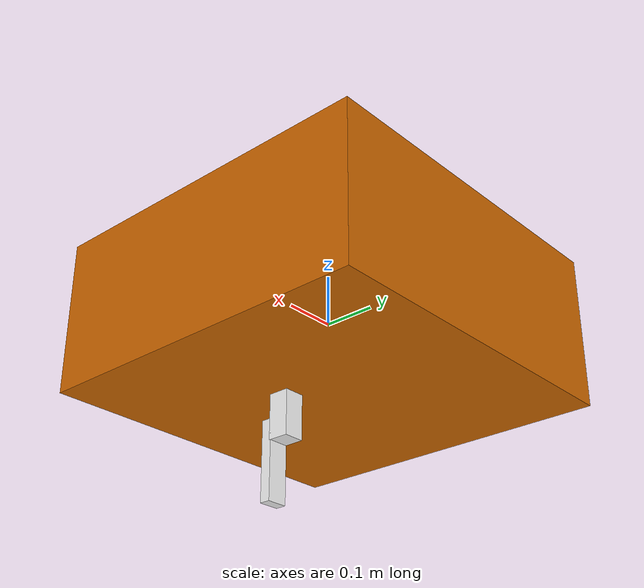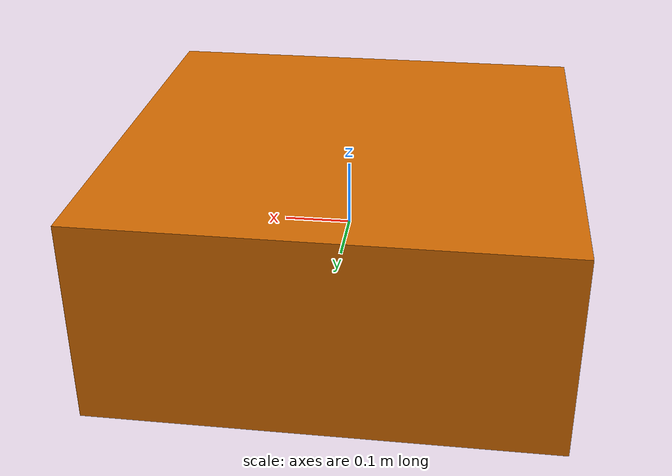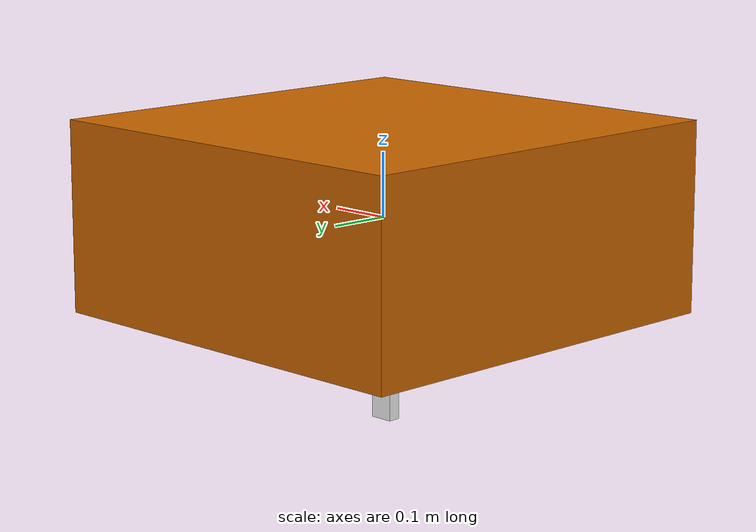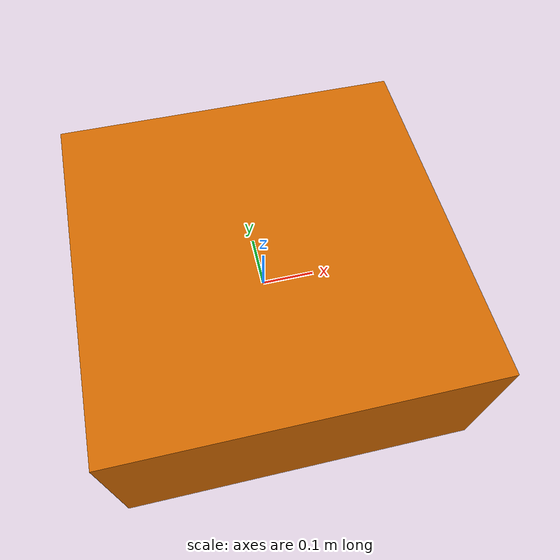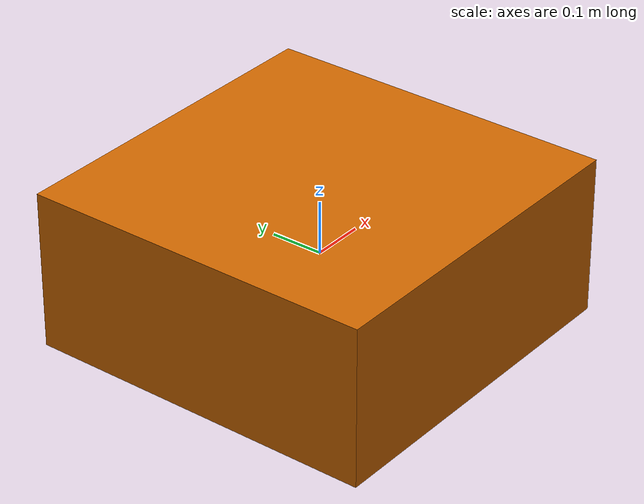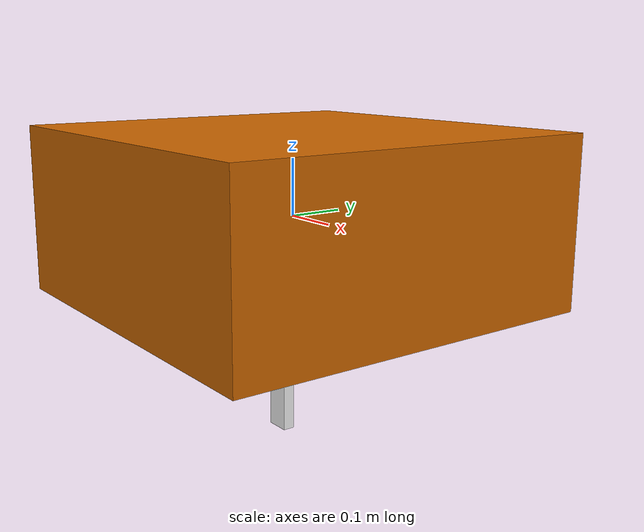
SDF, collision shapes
<!-- DO NOT EDIT: Generated from iris.sdf.jinja -->
<sdf version='1.5'>
  <model name='borinot_flying_arm_2'>
    <include merge='true'>
      <uri>model://borinot</uri>
    </include>

    <joint name='flying_arm_2__j_bl_link1' type='revolute'>
      <pose relative_to='borinot__base_link'>0.06470099999999999 -0.022177 -0.05075 1.5708
        4.235164736271502e-22 3.141585307179587</pose>
      <parent>borinot__base_link</parent>
      <child>flying_arm_2__link1</child>
      <axis>
        <xyz>0 0 -1</xyz>
        <limit>
          <lower>-1.6707963267948971</lower>
          <upper>1.6707963267948971</upper>
          <effort>2.5</effort>
          <velocity>10000</velocity>
        </limit>
        <dynamics>
          <spring_reference>0</spring_reference>
          <spring_stiffness>0</spring_stiffness>
        </dynamics>
      </axis>
    </joint>
    <link name='flying_arm_2__link1'>
      <pose relative_to='flying_arm_2__j_bl_link1'>0 0 0 0 0 0</pose>
      <inertial>
        <pose>1.377e-05 -0.078707 -0.01935853 0 0 0</pose>
        <mass>0.14853844999999999</mass>
        <inertia>
          <ixx>0.00041106999999999998</ixx>
          <ixy>0</ixy>
          <ixz>0</ixz>
          <iyy>3.0239999999999998e-05</iyy>
          <iyz>-4.6709999999999998e-05</iyz>
          <izz>0.00041193000000000002</izz>
        </inertia>
      </inertial>
      <collision name='flying_arm_2__link1_collision'>
        <pose>0 -0.085 -0.02 0 0 0</pose>
        <geometry>
          <box>
            <size>0.04 0.2 0.04</size>
          </box>
        </geometry>
      </collision>
      <visual name='flying_arm_2__link1_visual'>
        <pose>0 0 0 0 0 0</pose>
        <geometry>
          <mesh>
            <scale>1 1 1</scale>
            <uri>model://borinot_flying_arm_2/meshes/flying_arm_2__link1.dae</uri>
          </mesh>
        </geometry>
        <material>
          <diffuse>0.941176 0.941176 0.941176 1</diffuse>
          <ambient>0.941176 0.941176 0.941176 1</ambient>
        </material>
      </visual>
    </link>
    <joint name='flying_arm_2__j_link1_link2' type='revolute'>
      <pose relative_to='flying_arm_2__link1'>0 -0.16 -0.03715 0 0 0</pose>
      <parent>flying_arm_2__link1</parent>
      <child>flying_arm_2__link2</child>
      <axis>
        <xyz>0 0 -1</xyz>
        <limit>
          <lower>-1.6707963267948971</lower>
          <upper>1.6707963267948971</upper>
          <effort>2.5</effort>
          <velocity>10000</velocity>
        </limit>
        <dynamics>
          <spring_reference>0</spring_reference>
          <spring_stiffness>0</spring_stiffness>
        </dynamics>
      </axis>
    </joint>
    <link name='flying_arm_2__link2'>
      <pose relative_to='flying_arm_2__j_link1_link2'>0 0 0 0 0 0</pose>
      <inertial>
        <pose>0 -0.1149 -0.021 0 0 0</pose>
        <mass>0.115</mass>
        <inertia>
          <ixx>0.0001755400000000001</ixx>
          <ixy>0</ixy>
          <ixz>0</ixz>
          <iyy>1.9720000000000021e-05</iyy>
          <iyz>-5.4210108624275222e-20</iyz>
          <izz>0.00017938000000000001</izz>
        </inertia>
      </inertial>
      <collision name='flying_arm_2__link2_collision'>
        <pose>0 -0.06 -0.01 0 0 0</pose>
        <geometry>
          <box>
            <size>0.04 0.15 0.02</size>
          </box>
        </geometry>
      </collision>
      <visual name='flying_arm_2__link2_visual'>
        <pose>0 0 0 0 0 0</pose>
        <geometry>
          <mesh>
            <scale>1 1 1</scale>
            <uri>model://borinot_flying_arm_2/meshes/flying_arm_2__link2.dae</uri>
          </mesh>
        </geometry>
        <material>
          <diffuse>0.941176 0.941176 0.941176 1</diffuse>
          <ambient>0.941176 0.941176 0.941176 1</ambient>
        </material>
      </visual>
    </link>

    <plugin
      filename="libgazebo_odri_joint_controller.so"
      name="odri_joint_controller::OdriJointController">
      <joint_name>flying_arm_2__j_bl_link1</joint_name>
      <topic_cmd>/flying_arm_2__j_bl_link1/cmd</topic_cmd>
      <topic_state>/flying_arm_2__j_bl_link1/state</topic_state>
      <motor_constant>0.025</motor_constant>
      <gear_ratio>9</gear_ratio>
      <max_current>4</max_current>
      <max_velocity>80.</max_velocity>
      <lower_limit>-1.5</lower_limit>
      <upper_limit>+1.5</upper_limit>
      <kp>0.5</kp>
      <kd>5.0</kd>
      <kff>1.0</kff>
      <dt>0.001</dt>
    </plugin>

    <plugin
      filename="libgazebo_odri_joint_controller.so"
      name="odri_joint_controller::OdriJointController">
      <joint_name>flying_arm_2__j_link1_link2</joint_name>
      <topic_cmd>/flying_arm_2__j_link1_link2/cmd</topic_cmd>
      <topic_state>/flying_arm_2__j_link1_link2/state</topic_state>
      <motor_constant>0.025</motor_constant>
      <gear_ratio>9</gear_ratio>
      <max_current>4</max_current>
      <max_velocity>80.</max_velocity>
      <lower_limit>-3</lower_limit>
      <upper_limit>+3</upper_limit>
      <kp>0.5</kp>
      <kd>5.0</kd>
      <kff>1.0</kff>
      <dt>0.001</dt>
    </plugin>

  </model>
</sdf>

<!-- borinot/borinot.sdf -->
<!-- DO NOT EDIT: Generated from iris.sdf.jinja -->
<sdf version='1.5'>
  <model name='borinot'>
    <pose>0 0 0.0 0 0 0</pose>
    <link name='borinot__base_link'>
      <pose>0 0 0 0 0 0</pose>
      <inertial>
        <pose>0 0 0 0 0 0</pose>
        <mass>2.085</mass>
        <inertia>
          <ixx>0.017598</ixx>
          <ixy>0.0</ixy>
          <ixz>0.0</ixz>
          <iyy>0.017957</iyy>
          <iyz>0.0</iyz>
          <izz>0.029599</izz>
        </inertia>
      </inertial>
      <!-- TODO: check that is touching the ground -->
      <collision name='base_link_collision'>
        <pose>0 0 0.0 0 0 0</pose>
        <geometry>
          <box>
            <size>0.67 0.67 0.30</size>
          </box>
        </geometry>
        <surface>
          <contact>
            <ode>
              <min_depth>0.001</min_depth>
              <max_vel>0</max_vel>
            </ode>
          </contact>
          <friction>
            <ode />
          </friction>
        </surface>
      </collision>
      <visual name='base_link_visual'>
        <pose>0 0 0 0 0 0</pose>
        <geometry>
          <mesh>
            <scale>1 1 1</scale>
            <!-- TODO: add specific borinot mesh -->
            <uri>model://borinot/meshes/borinot__base_link.dae</uri>
          </mesh>
        </geometry>
        <material>
          <ambient>0.8 0.4 0 1</ambient>
          <diffuse>0.8 0.4 0 1</diffuse>
          <specular>0.1 0.1 0.1 1</specular>
          <emissive>0 0 0 0</emissive>
        </material>
      </visual>
      <gravity>1</gravity>
      <velocity_decay />
    </link>
    <link name='imu_link'>
      <pose>0 0 0 0 0 0</pose>
      <inertial>
        <pose>0 0 0 0 0 0</pose>
        <mass>0.015</mass>
        <inertia>
          <ixx>1e-05</ixx>
          <ixy>0</ixy>
          <ixz>0</ixz>
          <iyy>1e-05</iyy>
          <iyz>0</iyz>
          <izz>1e-05</izz>
        </inertia>
      </inertial>
      <sensor name="imu_sensor" type="imu">
        <always_on>1</always_on>
        <update_rate>250</update_rate>
        <visualize>true</visualize>
      </sensor>
    </link>
    <joint name='imu_joint' type='revolute'>
      <child>imu_link</child>
      <parent>borinot__base_link</parent>
      <axis>
        <xyz>1 0 0</xyz>
        <limit>
          <lower>0</lower>
          <upper>0</upper>
          <effort>0</effort>
          <velocity>0</velocity>
        </limit>
        <dynamics>
          <spring_reference>0</spring_reference>
          <spring_stiffness>0</spring_stiffness>
        </dynamics>
        <use_parent_model_frame>1</use_parent_model_frame>
      </axis>
    </joint>
    <link name='rotor_0'>
      <pose> 0 -0.185 0.05 0 0 0</pose>
      <inertial>
        <pose>0 0 0 0 0 0</pose>
        <mass>0.005</mass>
        <inertia>
          <ixx>9.75e-07</ixx>
          <ixy>0</ixy>
          <ixz>0</ixz>
          <iyy>0.000273104</iyy>
          <iyz>0</iyz>
          <izz>0.000274004</izz>
        </inertia>
      </inertial>
      <collision name='rotor_0_collision'>
        <pose>0 0 0 0 0 0</pose>
        <geometry>
          <cylinder>
            <length>0.005</length>
            <radius>0.128</radius>
          </cylinder>
        </geometry>
        <surface>
          <contact>
            <ode />
          </contact>
          <friction>
            <ode />
          </friction>
        </surface>
      </collision>
      <visual name='rotor_0_visual'>
        <pose>0 0 0 0 0 0</pose>
        <geometry>
          <mesh>
            <scale>0.1 0.1 0.1</scale>
            <uri>model://borinot/meshes/propeller_cw.dae</uri>
          </mesh>
        </geometry>
        <material>
          <script>
            <name>Gazebo/DarkGrey</name>
            <uri>file://media/materials/scripts/gazebo.material</uri>
          </script>
        </material>
      </visual>
      <gravity>1</gravity>
      <velocity_decay />
    </link>
    <joint name='rotor_0_joint' type='revolute'>
      <child>rotor_0</child>
      <parent>borinot__base_link</parent>
      <axis>
        <xyz>0 0 1</xyz>
        <limit>
          <lower>-1e+16</lower>
          <upper>1e+16</upper>
        </limit>
        <dynamics>
          <spring_reference>0</spring_reference>
          <spring_stiffness>0</spring_stiffness>
        </dynamics>
        <use_parent_model_frame>1</use_parent_model_frame>
      </axis>
    </joint>
    <link name='rotor_1'>
      <pose>0 0.185 0.05 0 0 0</pose>
      <inertial>
        <pose>0 0 0 0 0 0</pose>
        <mass>0.005</mass>
        <inertia>
          <ixx>9.75e-07</ixx>
          <ixy>0</ixy>
          <ixz>0</ixz>
          <iyy>0.000273104</iyy>
          <iyz>0</iyz>
          <izz>0.000274004</izz>
        </inertia>
      </inertial>
      <collision name='rotor_1_collision'>
        <pose>0 0 0 0 0 0</pose>
        <geometry>
          <cylinder>
            <length>0.005</length>
            <radius>0.128</radius>
          </cylinder>
        </geometry>
        <surface>
          <contact>
            <ode />
          </contact>
          <friction>
            <ode />
          </friction>
        </surface>
      </collision>
      <visual name='rotor_1_visual'>
        <pose>0 0 0 0 0 0</pose>
        <geometry>
          <mesh>
            <scale>0.1 0.1 0.1</scale>
            <uri>model://borinot/meshes/propeller_ccw.dae</uri>
          </mesh>
        </geometry>
        <material>
          <script>
            <name>Gazebo/DarkGrey</name>
            <uri>file://media/materials/scripts/gazebo.material</uri>
          </script>
        </material>
      </visual>
      <gravity>1</gravity>
      <velocity_decay />
    </link>
    <joint name='rotor_1_joint' type='revolute'>
      <child>rotor_1</child>
      <parent>borinot__base_link</parent>
      <axis>
        <xyz>0 0 1</xyz>
        <limit>
          <lower>-1e+16</lower>
          <upper>1e+16</upper>
        </limit>
        <dynamics>
          <spring_reference>0</spring_reference>
          <spring_stiffness>0</spring_stiffness>
        </dynamics>
        <use_parent_model_frame>1</use_parent_model_frame>
      </axis>
    </joint>
    <link name='rotor_2'>
      <pose>0.1602146997 0.0925 0.05 0 0 0</pose>
      <inertial>
        <pose>0 0 0 0 0 0</pose>
        <mass>0.005</mass>
        <inertia>
          <ixx>9.75e-07</ixx>
          <ixy>0</ixy>
          <ixz>0</ixz>
          <iyy>0.000273104</iyy>
          <iyz>0</iyz>
          <izz>0.000274004</izz>
        </inertia>
      </inertial>
      <collision name='rotor_2_collision'>
        <pose>0 0 0 0 0 0</pose>
        <geometry>
          <cylinder>
            <length>0.005</length>
            <radius>0.128</radius>
          </cylinder>
        </geometry>
        <surface>
          <contact>
            <ode />
          </contact>
          <friction>
            <ode />
          </friction>
        </surface>
      </collision>
      <visual name='rotor_2_visual'>
        <pose>0 0 0 0 0 0</pose>
        <geometry>
          <mesh>
            <scale>0.1 0.1 0.1</scale>
            <uri>model://borinot/meshes/propeller_cw.dae</uri>
          </mesh>
        </geometry>
        <material>
          <script>
            <name>Gazebo/Blue</name>
            <uri>file://media/materials/scripts/gazebo.material</uri>
          </script>
        </material>
      </visual>
      <gravity>1</gravity>
      <velocity_decay />
    </link>
    <joint name='rotor_2_joint' type='revolute'>
      <child>rotor_2</child>
      <parent>borinot__base_link</parent>
      <axis>
        <xyz>0 0 1</xyz>
        <limit>
          <lower>-1e+16</lower>
          <upper>1e+16</upper>
        </limit>
        <dynamics>
          <spring_reference>0</spring_reference>
          <spring_stiffness>0</spring_stiffness>
        </dynamics>
        <use_parent_model_frame>1</use_parent_model_frame>
      </axis>
    </joint>
    <link name='rotor_3'>
      <pose>-0.1602146997 -0.0925 0.05 0 0 0</pose>
      <inertial>
        <pose>0 0 0 0 0 0</pose>
        <mass>0.005</mass>
        <inertia>
          <ixx>9.75e-07</ixx>
          <ixy>0</ixy>
          <ixz>0</ixz>
          <iyy>0.000273104</iyy>
          <iyz>0</iyz>
          <izz>0.000274004</izz>
        </inertia>
      </inertial>
      <collision name='rotor_3_collision'>
        <pose>0 0 0 0 0 0</pose>
        <geometry>
          <cylinder>
            <length>0.005</length>
            <radius>0.128</radius>
          </cylinder>
        </geometry>
        <surface>
          <contact>
            <ode />
          </contact>
          <friction>
            <ode />
          </friction>
        </surface>
      </collision>
      <visual name='rotor_3_visual'>
        <pose>0 0 0 0 0 0</pose>
        <geometry>
          <mesh>
            <scale>0.1 0.1 0.1</scale>
            <uri>model://borinot/meshes/propeller_ccw.dae</uri>
          </mesh>
        </geometry>
        <material>
          <script>
            <name>Gazebo/DarkGrey</name>
            <uri>file://media/materials/scripts/gazebo.material</uri>
          </script>
        </material>
      </visual>
      <gravity>1</gravity>
      <velocity_decay />
    </link>
    <joint name='rotor_3_joint' type='revolute'>
      <child>rotor_3</child>
      <parent>borinot__base_link</parent>
      <axis>
        <xyz>0 0 1</xyz>
        <limit>
          <lower>-1e+16</lower>
          <upper>1e+16</upper>
        </limit>
        <dynamics>
          <spring_reference>0</spring_reference>
          <spring_stiffness>0</spring_stiffness>
        </dynamics>
        <use_parent_model_frame>1</use_parent_model_frame>
      </axis>
    </joint>
    <link name='rotor_4'>
      <pose>0.1602146997 -0.0925 0.05 0 0 0</pose>
      <inertial>
        <pose>0 0 0 0 0 0</pose>
        <mass>0.005</mass>
        <inertia>
          <ixx>9.75e-07</ixx>
          <ixy>0</ixy>
          <ixz>0</ixz>
          <iyy>0.000273104</iyy>
          <iyz>0</iyz>
          <izz>0.000274004</izz>
        </inertia>
      </inertial>
      <collision name='rotor_4_collision'>
        <pose>0 0 0 0 0 0</pose>
        <geometry>
          <cylinder>
            <length>0.005</length>
            <radius>0.128</radius>
          </cylinder>
        </geometry>
        <surface>
          <contact>
            <ode />
          </contact>
          <friction>
            <ode />
          </friction>
        </surface>
      </collision>
      <visual name='rotor_4_visual'>
        <pose>0 0 0 0 0 0</pose>
        <geometry>
          <mesh>
            <scale>0.1 0.1 0.1</scale>
            <uri>model://borinot/meshes/propeller_ccw.dae</uri>
          </mesh>
        </geometry>
        <material>
          <script>
            <name>Gazebo/Blue</name>
            <uri>file://media/materials/scripts/gazebo.material</uri>
          </script>
        </material>
      </visual>
      <gravity>1</gravity>
      <velocity_decay />
    </link>
    <joint name='rotor_4_joint' type='revolute'>
      <child>rotor_4</child>
      <parent>borinot__base_link</parent>
      <axis>
        <xyz>0 0 1</xyz>
        <limit>
          <lower>-1e+16</lower>
          <upper>1e+16</upper>
        </limit>
        <dynamics>
          <spring_reference>0</spring_reference>
          <spring_stiffness>0</spring_stiffness>
        </dynamics>
        <use_parent_model_frame>1</use_parent_model_frame>
      </axis>
    </joint>
    <link name='rotor_5'>
      <pose>-0.1602146997 0.0925 0.05 0 0 0</pose>
      <inertial>
        <pose>0 0 0 0 0 0</pose>
        <mass>0.005</mass>
        <inertia>
          <ixx>9.75e-07</ixx>
          <ixy>0</ixy>
          <ixz>0</ixz>
          <iyy>0.000273104</iyy>
          <iyz>0</iyz>
          <izz>0.000274004</izz>
        </inertia>
      </inertial>
      <collision name='rotor_5_collision'>
        <pose>0 0 0 0 0 0</pose>
        <geometry>
          <cylinder>
            <length>0.005</length>
            <radius>0.128</radius>
          </cylinder>
        </geometry>
        <surface>
          <contact>
            <ode />
          </contact>
          <friction>
            <ode />
          </friction>
        </surface>
      </collision>
      <visual name='rotor_5_visual'>
        <pose>0 0 0 0 0 0</pose>
        <geometry>
          <mesh>
            <scale>0.1 0.1 0.1</scale>
            <uri>model://borinot/meshes/propeller_cw.dae</uri>
          </mesh>
        </geometry>
        <material>
          <script>
            <name>Gazebo/DarkGrey</name>
            <uri>file://media/materials/scripts/gazebo.material</uri>
          </script>
        </material>
      </visual>
      <gravity>1</gravity>
      <velocity_decay />
    </link>
    <joint name='rotor_5_joint' type='revolute'>
      <child>rotor_5</child>
      <parent>borinot__base_link</parent>
      <axis>
        <xyz>0 0 1</xyz>
        <limit>
          <lower>-1e+16</lower>
          <upper>1e+16</upper>
        </limit>
        <dynamics>
          <spring_reference>0</spring_reference>
          <spring_stiffness>0</spring_stiffness>
        </dynamics>
        <use_parent_model_frame>1</use_parent_model_frame>
      </axis>
    </joint>

    <plugin
      filename="libgazebo_barometer_plugin.so"
      name="barometer_plugin::BarometerPlugin">
      <linkName>borinot__base_link</linkName>
      <pubRate>50</pubRate>
      <baroTopic>/baro</baroTopic>
    </plugin>
    <plugin
      filename="libgazebo_magnetometer_plugin.so"
      name="magnetometer_plugin::MagnetometerPlugin">
      <linkName>borinot__base_link</linkName>
      <pubRate>100</pubRate>
      <noiseDensity>0.0004</noiseDensity>
      <randomWalk>6.4e-06</randomWalk>
      <biasCorrelationTime>600</biasCorrelationTime>
      <magTopic>/mag</magTopic>
    </plugin>
    <plugin
      filename="libgazebo_gps_plugin.so"
      name="gps_plugin::GpsPlugin">
      <link_name>borinot__base_link</link_name>
    </plugin>

    <plugin name='ignition::gazebo::systems::MulticopterMotorModel'
      filename='ignition-gazebo-multicopter-motor-model-system'>
      <jointName>rotor_0_joint</jointName>
      <linkName>rotor_0</linkName>
      <turningDirection>cw</turningDirection>
      <!-- time constant identified by sergi -->
      <timeConstantUp>0.005</timeConstantUp>
      <timeConstantDown>0.005</timeConstantDown>
      <!-- tmotor f90 kv1300 datasheet, 6S GF 7042 -->
      <!--
            max rpm: 21350 = 2236rad/s
            max thrust: 2110g = 20.6991N
            cf computed with 60% thrust values (1196g at 15400rpm)
            cf =
        -->
      <maxRotVelocity>2236</maxRotVelocity>
      <motorConstant>4.511e-06</motorConstant>
      <!-- TODO: moment constant to be identified -->
      <momentConstant>0.06</momentConstant>
      <commandSubTopic>/gazebo/command/motor_speed</commandSubTopic>
      <motorNumber>0</motorNumber>
      <!-- TODO: don't know what this constant does -->
      <rotorDragCoefficient>0.000175</rotorDragCoefficient>
      <rollingMomentCoefficient>1e-06</rollingMomentCoefficient>
      <motorSpeedPubTopic>/motor_speed/0</motorSpeedPubTopic>
      <rotorVelocitySlowdownSim>10</rotorVelocitySlowdownSim>
      <motorType>velocity</motorType>
    </plugin>

    <plugin name='ignition::gazebo::systems::MulticopterMotorModel'
      filename='ignition-gazebo-multicopter-motor-model-system'>
      <jointName>rotor_1_joint</jointName>
      <linkName>rotor_1</linkName>
      <turningDirection>ccw</turningDirection>
      <!-- time constant identified by sergi -->
      <timeConstantUp>0.005</timeConstantUp>
      <timeConstantDown>0.005</timeConstantDown>
      <!-- tmotor f90 kv1300 datasheet, 6S GF 7042 -->
      <!--
            max rpm: 21350 = 2236rad/s
            max thrust: 2110g = 20.6991N
            cf computed with 60% thrust values (1196g at 15400rpm)
            cf =
        -->
      <maxRotVelocity>2236</maxRotVelocity>
      <motorConstant>4.511e-06</motorConstant>
      <!-- TODO: moment constant to be identified -->
      <momentConstant>0.06</momentConstant>
      <commandSubTopic>/gazebo/command/motor_speed</commandSubTopic>
      <motorNumber>1</motorNumber>
      <!-- TODO: don't know what this constant does -->
      <rotorDragCoefficient>0.000175</rotorDragCoefficient>
      <rollingMomentCoefficient>1e-06</rollingMomentCoefficient>
      <motorSpeedPubTopic>/motor_speed/1</motorSpeedPubTopic>
      <rotorVelocitySlowdownSim>10</rotorVelocitySlowdownSim>
      <motorType>velocity</motorType>
    </plugin>

    <plugin name='ignition::gazebo::systems::MulticopterMotorModel'
      filename='ignition-gazebo-multicopter-motor-model-system'>
      <jointName>rotor_2_joint</jointName>
      <linkName>rotor_2</linkName>
      <turningDirection>cw</turningDirection>
      <!-- time constant identified by sergi -->
      <timeConstantUp>0.005</timeConstantUp>
      <timeConstantDown>0.005</timeConstantDown>
      <!-- tmotor f90 kv1300 datasheet, 6S GF 7042 -->
      <!--
            max rpm: 21350 = 2236rad/s
            max thrust: 2110g = 20.6991N
            cf computed with 60% thrust values (1196g at 15400rpm)
            cf =
        -->
      <maxRotVelocity>2236</maxRotVelocity>
      <motorConstant>4.511e-06</motorConstant>
      <!-- TODO: moment constant to be identified -->
      <momentConstant>0.06</momentConstant>
      <commandSubTopic>/gazebo/command/motor_speed</commandSubTopic>
      <motorNumber>2</motorNumber>
      <!-- TODO: don't know what this constant does -->
      <rotorDragCoefficient>0.000175</rotorDragCoefficient>
      <rollingMomentCoefficient>1e-06</rollingMomentCoefficient>
      <motorSpeedPubTopic>/motor_speed/2</motorSpeedPubTopic>
      <rotorVelocitySlowdownSim>10</rotorVelocitySlowdownSim>
      <motorType>velocity</motorType>
    </plugin>

    <plugin name='ignition::gazebo::systems::MulticopterMotorModel'
      filename='ignition-gazebo-multicopter-motor-model-system'>
      <jointName>rotor_3_joint</jointName>
      <linkName>rotor_3</linkName>
      <turningDirection>ccw</turningDirection>
      <!-- time constant identified by sergi -->
      <timeConstantUp>0.005</timeConstantUp>
      <timeConstantDown>0.005</timeConstantDown>
      <!-- tmotor f90 kv1300 datasheet, 6S GF 7042 -->
      <!--
            max rpm: 21350 = 2236rad/s
            max thrust: 2110g = 20.6991N
            cf computed with 60% thrust values (1196g at 15400rpm)
            cf =
        -->
      <maxRotVelocity>2236</maxRotVelocity>
      <motorConstant>4.511e-06</motorConstant>
      <!-- TODO: moment constant to be identified -->
      <momentConstant>0.06</momentConstant>
      <commandSubTopic>/gazebo/command/motor_speed</commandSubTopic>
      <motorNumber>3</motorNumber>
      <!-- TODO: don't know what this constant does -->
      <rotorDragCoefficient>0.000175</rotorDragCoefficient>
      <rollingMomentCoefficient>1e-06</rollingMomentCoefficient>
      <motorSpeedPubTopic>/motor_speed/3</motorSpeedPubTopic>
      <rotorVelocitySlowdownSim>10</rotorVelocitySlowdownSim>
      <motorType>velocity</motorType>
    </plugin>

    <plugin name='ignition::gazebo::systems::MulticopterMotorModel'
      filename='ignition-gazebo-multicopter-motor-model-system'>
      <jointName>rotor_4_joint</jointName>
      <linkName>rotor_4</linkName>
      <turningDirection>ccw</turningDirection>
      <!-- time constant identified by sergi -->
      <timeConstantUp>0.005</timeConstantUp>
      <timeConstantDown>0.005</timeConstantDown>
      <!-- tmotor f90 kv1300 datasheet, 6S GF 7042 -->
      <!--
            max rpm: 21350 = 2236rad/s
            max thrust: 2110g = 20.6991N
            cf computed with 60% thrust values (1196g at 15400rpm)
            cf =
        -->
      <maxRotVelocity>2236</maxRotVelocity>
      <motorConstant>4.511e-06</motorConstant>
      <!-- TODO: moment constant to be identified -->
      <momentConstant>0.06</momentConstant>
      <commandSubTopic>/gazebo/command/motor_speed</commandSubTopic>
      <motorNumber>4</motorNumber>
      <!-- TODO: don't know what this constant does -->
      <rotorDragCoefficient>0.000175</rotorDragCoefficient>
      <rollingMomentCoefficient>1e-06</rollingMomentCoefficient>
      <motorSpeedPubTopic>/motor_speed/4</motorSpeedPubTopic>
      <rotorVelocitySlowdownSim>10</rotorVelocitySlowdownSim>
      <motorType>velocity</motorType>
    </plugin>

    <plugin name='ignition::gazebo::systems::MulticopterMotorModel'
      filename='ignition-gazebo-multicopter-motor-model-system'>
      <jointName>rotor_5_joint</jointName>
      <linkName>rotor_5</linkName>
      <turningDirection>cw</turningDirection>
      <!-- time constant identified by sergi -->
      <timeConstantUp>0.005</timeConstantUp>
      <timeConstantDown>0.005</timeConstantDown>
      <!-- tmotor f90 kv1300 datasheet, 6S GF 7042 -->
      <!--
            max rpm: 21350 = 2236rad/s
            max thrust: 2110g = 20.6991N
            cf computed with 60% thrust values (1196g at 15400rpm)
            cf =
        -->
      <maxRotVelocity>2236</maxRotVelocity>
      <motorConstant>4.511e-06</motorConstant>
      <!-- TODO: moment constant to be identified -->
      <momentConstant>0.06</momentConstant>
      <commandSubTopic>/gazebo/command/motor_speed</commandSubTopic>
      <motorNumber>5</motorNumber>
      <!-- TODO: don't know what this constant does -->
      <rotorDragCoefficient>0.000175</rotorDragCoefficient>
      <rollingMomentCoefficient>1e-06</rollingMomentCoefficient>
      <motorSpeedPubTopic>/motor_speed/5</motorSpeedPubTopic>
      <rotorVelocitySlowdownSim>10</rotorVelocitySlowdownSim>
      <motorType>velocity</motorType>
    </plugin>

    <plugin
      filename="libmavlink_sitl_ign_gazebo.so"
      name="mavlink_interface::GazeboMavlinkInterface">
      <imuName>imu_sensor</imuName>
      <magSubTopic>/mag</magSubTopic>
      <baroSubTopic>/baro</baroSubTopic>
      <mavlink_addr>INADDR_ANY</mavlink_addr>
      <mavlink_tcp_port>4560</mavlink_tcp_port>
      <mavlink_udp_port>14560</mavlink_udp_port>
      <serialEnabled>0</serialEnabled>
      <serialDevice>/dev/ttyACM0</serialDevice>
      <baudRate>921600</baudRate>
      <qgc_addr>INADDR_ANY</qgc_addr>
      <qgc_udp_port>14550</qgc_udp_port>
      <sdk_addr>INADDR_ANY</sdk_addr>
      <sdk_udp_port>14540</sdk_udp_port>
      <hil_mode>0</hil_mode>
      <hil_state_level>0</hil_state_level>
      <send_vision_estimation>0</send_vision_estimation>
      <send_odometry>1</send_odometry>
      <enable_lockstep>1</enable_lockstep>
      <use_tcp>1</use_tcp>
      <motorSpeedCommandPubTopic>/gazebo/command/motor_speed</motorSpeedCommandPubTopic>
      <control_channels>
        <channel name='rotor1'>
          <input_index>0</input_index>
          <input_offset>0</input_offset>
          <input_scaling>2136</input_scaling>
          <zero_position_disarmed>0</zero_position_disarmed>
          <zero_position_armed>100</zero_position_armed>
          <joint_control_type>velocity</joint_control_type>
        </channel>
        <channel name='rotor2'>
          <input_index>1</input_index>
          <input_offset>0</input_offset>
          <input_scaling>2136</input_scaling>
          <zero_position_disarmed>0</zero_position_disarmed>
          <zero_position_armed>100</zero_position_armed>
          <joint_control_type>velocity</joint_control_type>
        </channel>
        <channel name='rotor3'>
          <input_index>2</input_index>
          <input_offset>0</input_offset>
          <input_scaling>2136</input_scaling>
          <zero_position_disarmed>0</zero_position_disarmed>
          <zero_position_armed>100</zero_position_armed>
          <joint_control_type>velocity</joint_control_type>
        </channel>
        <channel name='rotor4'>
          <input_index>3</input_index>
          <input_offset>0</input_offset>
          <input_scaling>2136</input_scaling>
          <zero_position_disarmed>0</zero_position_disarmed>
          <zero_position_armed>100</zero_position_armed>
          <joint_control_type>velocity</joint_control_type>
        </channel>
        <channel name='rotor5'>
          <input_index>4</input_index>
          <input_offset>0</input_offset>
          <input_scaling>2136</input_scaling>
          <zero_position_disarmed>0</zero_position_disarmed>
          <zero_position_armed>100</zero_position_armed>
          <joint_control_type>velocity</joint_control_type>
        </channel>
        <channel name='rotor6'>
          <input_index>5</input_index>
          <input_offset>0</input_offset>
          <input_scaling>2136</input_scaling>
          <zero_position_disarmed>0</zero_position_disarmed>
          <zero_position_armed>100</zero_position_armed>
          <joint_control_type>velocity</joint_control_type>
        </channel>
      </control_channels>
    </plugin>

    <static>0</static>
    <plugin filename="libignition-gazebo-imu-system.so"
      name="ignition::gazebo::systems::Imu">
      <linkName>imu_link</linkName>
      <imuTopic>/imu</imuTopic>
      <gyroscopeNoiseDensity>0.00018665</gyroscopeNoiseDensity>
      <gyroscopeRandomWalk>3.8785e-05</gyroscopeRandomWalk>
      <gyroscopeBiasCorrelationTime>1000.0</gyroscopeBiasCorrelationTime>
      <gyroscopeTurnOnBiasSigma>0.0087</gyroscopeTurnOnBiasSigma>
      <accelerometerNoiseDensity>0.00186</accelerometerNoiseDensity>
      <accelerometerRandomWalk>0.006</accelerometerRandomWalk>
      <accelerometerBiasCorrelationTime>300.0</accelerometerBiasCorrelationTime>
      <accelerometerTurnOnBiasSigma>0.196</accelerometerTurnOnBiasSigma>
    </plugin>
  </model>
</sdf>
